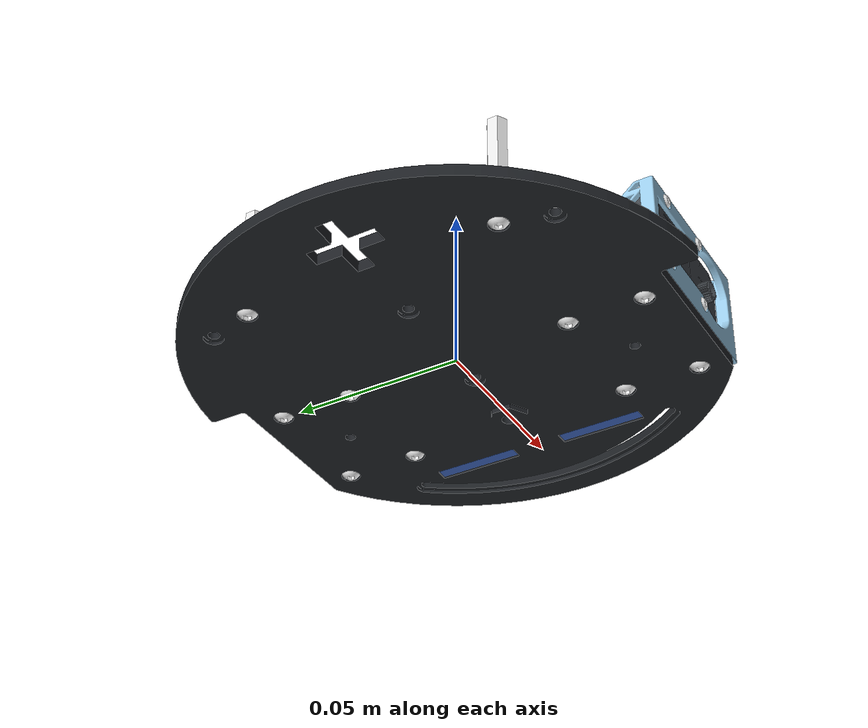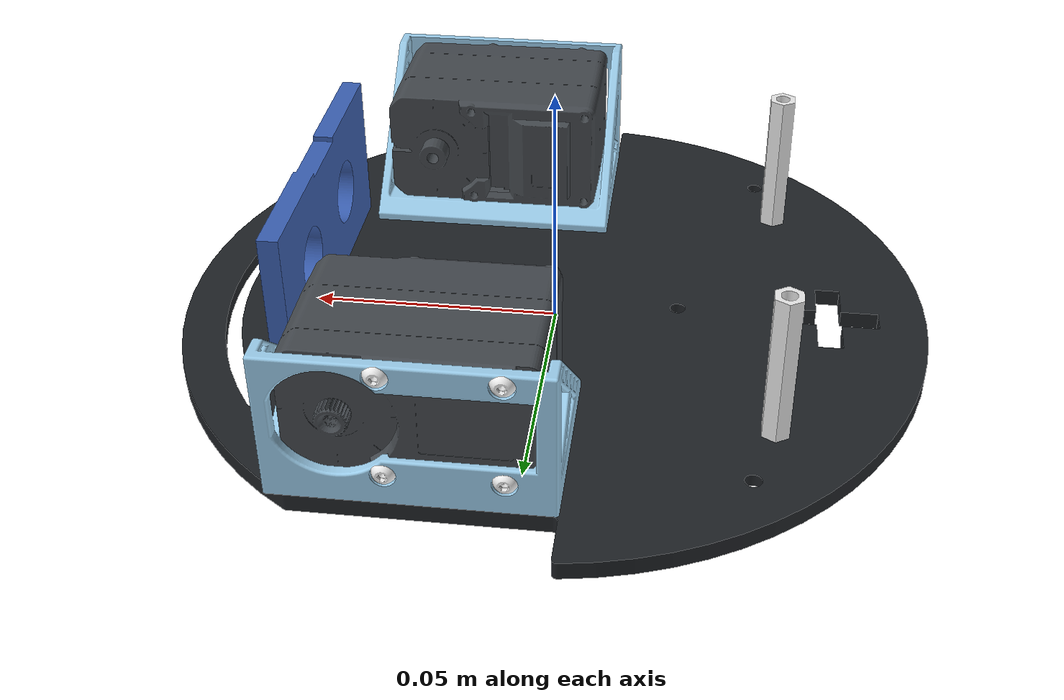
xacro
<?xml version="1.0" ?>
<robot xmlns:xacro="http://www.ros.org/wiki/xacro">

    <xacro:property name="base_floor1_m" value="0.256267" />
    <xacro:property name="base_floor1_r" value="0.07500000" />
    <xacro:property name="base_floor1_h" value="0.03350000" />
    <xacro:property name="base_floor1_o_xyz" value="0 0 ${base_floor1_h / 2}" />
    <xacro:property name="base_floor1_o_rpy" value="0 0 0" />

    <!-- Link base_floor1 -->
    <link name="base_floor1">
        <xacro:cylinder_inertia m="${base_floor1_m}" r="${base_floor1_r}" h="${base_floor1_h}" o_xyz="${base_floor1_o_xyz}" o_rpy="${base_floor1_o_rpy}"/>

        <collision>
        <origin xyz="${base_floor1_o_xyz}" rpy="${base_floor1_o_rpy}"/>
        <geometry>
            <cylinder radius="${base_floor1_r}" length="${base_floor1_h}" />
        </geometry>
        </collision>

        <!-- Part bn_8699_1727796_hexagon_socket_button_head_screw_m2_5x6 -->
        <visual>
        <origin xyz="0.0217 0.0627386 0.00961" rpy="3.14159 0 -1.5708"/>
        <geometry>
            <mesh filename="package://gizmo_description/meshes/bn_8699_1727796_hexagon_socket_button_head_screw_m2_5x6.stl"/>
        </geometry>
        <material name="bn_8699_1727796_hexagon_socket_button_head_screw_m2_5x6_material">
            <color rgba="0.941176 0.941176 0.941176 1"/>
        </material>
        </visual>

        <!-- Part standoff_spacer_m3_30mm -->
        <visual>
        <origin xyz="-0.0444488 -0.0371773 0.0035" rpy="0 -0 0"/>
        <geometry>
            <mesh filename="package://gizmo_description/meshes/standoff_spacer_m3_30mm.stl"/>
        </geometry>
        <material name="standoff_spacer_m3_30mm_material">
            <color rgba="0.917647 0.917647 0.917647 1"/>
        </material>
        </visual>

        <!-- Part bn_1593_1348663_hexagon_socket_button_head_screw_m3x6 -->
        <visual>
        <origin xyz="-0.0444488 -0.0371773 0.001" rpy="-0 -1.5708 0"/>
        <geometry>
            <mesh filename="package://gizmo_description/meshes/bn_1593_1348663_hexagon_socket_button_head_screw_m3x6.stl"/>
        </geometry>
        <material name="bn_1593_1348663_hexagon_socket_button_head_screw_m3x6_material">
            <color rgba="0.941176 0.941176 0.941176 1"/>
        </material>
        </visual>

        <!-- Part bn_8699_1727796_hexagon_socket_button_head_screw_m2_5x6_2 -->
        <visual>
        <origin xyz="0.001 -0.0627386 0.00961" rpy="1.5708 -0 1.5708"/>
        <geometry>
            <mesh filename="package://gizmo_description/meshes/bn_8699_1727796_hexagon_socket_button_head_screw_m2_5x6.stl"/>
        </geometry>
        <material name="bn_8699_1727796_hexagon_socket_button_head_screw_m2_5x6_2_material">
            <color rgba="0.941176 0.941176 0.941176 1"/>
        </material>
        </visual>

        <!-- Part standoff_spacer_m3_30mm_2 -->
        <visual>
        <origin xyz="-0.0444488 0.0371773 0.0035" rpy="0 -0 0"/>
        <geometry>
            <mesh filename="package://gizmo_description/meshes/standoff_spacer_m3_30mm.stl"/>
        </geometry>
        <material name="standoff_spacer_m3_30mm_2_material">
            <color rgba="0.917647 0.917647 0.917647 1"/>
        </material>
        </visual>

        <!-- Part bn_1593_1348663_hexagon_socket_button_head_screw_m3x6_2 -->
        <visual>
        <origin xyz="-0.00011 -0.0337386 0.001" rpy="-0 -1.5708 0"/>
        <geometry>
            <mesh filename="package://gizmo_description/meshes/bn_1593_1348663_hexagon_socket_button_head_screw_m3x6.stl"/>
        </geometry>
        <material name="bn_1593_1348663_hexagon_socket_button_head_screw_m3x6_2_material">
            <color rgba="0.941176 0.941176 0.941176 1"/>
        </material>
        </visual>

        <!-- Part bn_1593_1348663_hexagon_socket_button_head_screw_m3x6_3 -->
        <visual>
        <origin xyz="-0.00011 0.0337386 0.001" rpy="-0 -1.5708 0"/>
        <geometry>
            <mesh filename="package://gizmo_description/meshes/bn_1593_1348663_hexagon_socket_button_head_screw_m3x6.stl"/>
        </geometry>
        <material name="bn_1593_1348663_hexagon_socket_button_head_screw_m3x6_3_material">
            <color rgba="0.941176 0.941176 0.941176 1"/>
        </material>
        </visual>

        <!-- Part bn_8699_1727796_hexagon_socket_button_head_screw_m2_5x6_3 -->
        <visual>
        <origin xyz="0.0217 -0.0627386 0.00961" rpy="1.5708 -0 1.5708"/>
        <geometry>
            <mesh filename="package://gizmo_description/meshes/bn_8699_1727796_hexagon_socket_button_head_screw_m2_5x6.stl"/>
        </geometry>
        <material name="bn_8699_1727796_hexagon_socket_button_head_screw_m2_5x6_3_material">
            <color rgba="0.941176 0.941176 0.941176 1"/>
        </material>
        </visual>

        <!-- Part bn_1593_1348663_hexagon_socket_button_head_screw_m3x6_4 -->
        <visual>
        <origin xyz="0.03511 0.0557386 0.001" rpy="-0 -1.5708 0"/>
        <geometry>
            <mesh filename="package://gizmo_description/meshes/bn_1593_1348663_hexagon_socket_button_head_screw_m3x6.stl"/>
        </geometry>
        <material name="bn_1593_1348663_hexagon_socket_button_head_screw_m3x6_4_material">
            <color rgba="0.941176 0.941176 0.941176 1"/>
        </material>
        </visual>

        <!-- Part base_floor_1 -->
        <visual>
        <origin xyz="0 0 0" rpy="0 -0 0"/>
        <geometry>
            <mesh filename="package://gizmo_description/meshes/base_floor_1.stl"/>
        </geometry>
        <material name="base_floor_1_material">
            <color rgba="0.121569 0.133333 0.14902 1"/>
        </material>
        </visual>

        <!-- Part servo_bracket_r -->
        <visual>
        <origin xyz="0.0175 -0.0447386 0.0035" rpy="0 -0 0"/>
        <geometry>
            <mesh filename="package://gizmo_description/meshes/servo_bracket_r.stl"/>
        </geometry>
        <material name="servo_bracket_r_material">
            <color rgba="0.615686 0.811765 0.929412 1"/>
        </material>
        </visual>

        <!-- Part bn_1593_1348663_hexagon_socket_button_head_screw_m3x6_5 -->
        <visual>
        <origin xyz="0.03511 0.0337386 0.001" rpy="-0 -1.5708 0"/>
        <geometry>
            <mesh filename="package://gizmo_description/meshes/bn_1593_1348663_hexagon_socket_button_head_screw_m3x6.stl"/>
        </geometry>
        <material name="bn_1593_1348663_hexagon_socket_button_head_screw_m3x6_5_material">
            <color rgba="0.941176 0.941176 0.941176 1"/>
        </material>
        </visual>

        <!-- Part servo_bracket_l -->
        <visual>
        <origin xyz="0.0175 0.0447386 0.0035" rpy="0 -0 0"/>
        <geometry>
            <mesh filename="package://gizmo_description/meshes/servo_bracket_l.stl"/>
        </geometry>
        <material name="servo_bracket_l_material">
            <color rgba="0.615686 0.811765 0.929412 1"/>
        </material>
        </visual>

        <!-- Part bn_1593_1348663_hexagon_socket_button_head_screw_m3x6_6 -->
        <visual>
        <origin xyz="-0.0444488 0.0371773 0.001" rpy="-0 -1.5708 0"/>
        <geometry>
            <mesh filename="package://gizmo_description/meshes/bn_1593_1348663_hexagon_socket_button_head_screw_m3x6.stl"/>
        </geometry>
        <material name="bn_1593_1348663_hexagon_socket_button_head_screw_m3x6_6_material">
            <color rgba="0.941176 0.941176 0.941176 1"/>
        </material>
        </visual>

        <!-- Part st3215_hs_l -->
        <visual>
        <origin xyz="0.0175 0.0452886 0.00753371" rpy="0 -0 -0"/>
        <geometry>
            <mesh filename="package://gizmo_description/meshes/st3215_hs_l.stl"/>
        </geometry>
        <material name="st3215_hs_l_material">
            <color rgba="0.262745 0.282353 0.301961 1"/>
        </material>
        </visual>

        <!-- Part st3215_hs_r -->
        <visual>
        <origin xyz="0.0175 -0.0452886 0.00753324" rpy="0 -0 -0"/>
        <geometry>
            <mesh filename="package://gizmo_description/meshes/st3215_hs_r.stl"/>
        </geometry>
        <material name="st3215_hs_r_material">
            <color rgba="0.262745 0.282353 0.301961 1"/>
        </material>
        </visual>

        <!-- Part bn_8699_1727796_hexagon_socket_button_head_screw_m2_5x6_4 -->
        <visual>
        <origin xyz="0.001 0.0627386 0.03011" rpy="3.14159 0 -1.5708"/>
        <geometry>
            <mesh filename="package://gizmo_description/meshes/bn_8699_1727796_hexagon_socket_button_head_screw_m2_5x6.stl"/>
        </geometry>
        <material name="bn_8699_1727796_hexagon_socket_button_head_screw_m2_5x6_4_material">
            <color rgba="0.941176 0.941176 0.941176 1"/>
        </material>
        </visual>

        <!-- Part bn_8699_1727796_hexagon_socket_button_head_screw_m2_5x6_5 -->
        <visual>
        <origin xyz="0.001 0.0627386 0.00961" rpy="3.14159 0 -1.5708"/>
        <geometry>
            <mesh filename="package://gizmo_description/meshes/bn_8699_1727796_hexagon_socket_button_head_screw_m2_5x6.stl"/>
        </geometry>
        <material name="bn_8699_1727796_hexagon_socket_button_head_screw_m2_5x6_5_material">
            <color rgba="0.941176 0.941176 0.941176 1"/>
        </material>
        </visual>

        <!-- Part face_plate_bottom -->
        <visual>
        <origin xyz="0.048 -0 0.0035" rpy="0 -0 0"/>
        <geometry>
            <mesh filename="package://gizmo_description/meshes/face_plate_bottom.stl"/>
        </geometry>
        <material name="face_plate_bottom_material">
            <color rgba="0.231373 0.380392 0.705882 1"/>
        </material>
        </visual>

        <!-- Part bn_1593_1348663_hexagon_socket_button_head_screw_m3x6_7 -->
        <visual>
        <origin xyz="0.03511 -0.0337386 0.001" rpy="-0 -1.5708 0"/>
        <geometry>
            <mesh filename="package://gizmo_description/meshes/bn_1593_1348663_hexagon_socket_button_head_screw_m3x6.stl"/>
        </geometry>
        <material name="bn_1593_1348663_hexagon_socket_button_head_screw_m3x6_7_material">
            <color rgba="0.941176 0.941176 0.941176 1"/>
        </material>
        </visual>

        <!-- Part bn_8699_1727796_hexagon_socket_button_head_screw_m2_5x6_6 -->
        <visual>
        <origin xyz="0.0217 -0.0627386 0.03011" rpy="1.5708 -0 1.5708"/>
        <geometry>
            <mesh filename="package://gizmo_description/meshes/bn_8699_1727796_hexagon_socket_button_head_screw_m2_5x6.stl"/>
        </geometry>
        <material name="bn_8699_1727796_hexagon_socket_button_head_screw_m2_5x6_6_material">
            <color rgba="0.941176 0.941176 0.941176 1"/>
        </material>
        </visual>

        <!-- Part bn_1593_1348663_hexagon_socket_button_head_screw_m3x6_8 -->
        <visual>
        <origin xyz="0.03511 -0.0557386 0.001" rpy="-0 -1.5708 0"/>
        <geometry>
            <mesh filename="package://gizmo_description/meshes/bn_1593_1348663_hexagon_socket_button_head_screw_m3x6.stl"/>
        </geometry>
        <material name="bn_1593_1348663_hexagon_socket_button_head_screw_m3x6_8_material">
            <color rgba="0.941176 0.941176 0.941176 1"/>
        </material>
        </visual>

        <!-- Part bn_8699_1727796_hexagon_socket_button_head_screw_m2_5x6_7 -->
        <visual>
        <origin xyz="0.001 -0.0627386 0.03011" rpy="1.5708 -0 1.5708"/>
        <geometry>
            <mesh filename="package://gizmo_description/meshes/bn_8699_1727796_hexagon_socket_button_head_screw_m2_5x6.stl"/>
        </geometry>
        <material name="bn_8699_1727796_hexagon_socket_button_head_screw_m2_5x6_7_material">
            <color rgba="0.941176 0.941176 0.941176 1"/>
        </material>
        </visual>

        <!-- Part bn_1593_1348663_hexagon_socket_button_head_screw_m3x6_9 -->
        <visual>
        <origin xyz="-0.00011 0.0557386 0.001" rpy="-0 -1.5708 0"/>
        <geometry>
            <mesh filename="package://gizmo_description/meshes/bn_1593_1348663_hexagon_socket_button_head_screw_m3x6.stl"/>
        </geometry>
        <material name="bn_1593_1348663_hexagon_socket_button_head_screw_m3x6_9_material">
            <color rgba="0.941176 0.941176 0.941176 1"/>
        </material>
        </visual>

        <!-- Part bn_8699_1727796_hexagon_socket_button_head_screw_m2_5x6_8 -->
        <visual>
        <origin xyz="0.0217 0.0627386 0.03011" rpy="3.14159 0 -1.5708"/>
        <geometry>
            <mesh filename="package://gizmo_description/meshes/bn_8699_1727796_hexagon_socket_button_head_screw_m2_5x6.stl"/>
        </geometry>
        <material name="bn_8699_1727796_hexagon_socket_button_head_screw_m2_5x6_8_material">
            <color rgba="0.941176 0.941176 0.941176 1"/>
        </material>
        </visual>

        <!-- Part bn_1593_1348663_hexagon_socket_button_head_screw_m3x6_10 -->
        <visual>
        <origin xyz="-0.00011 -0.0557386 0.001" rpy="-0 -1.5708 0"/>
        <geometry>
            <mesh filename="package://gizmo_description/meshes/bn_1593_1348663_hexagon_socket_button_head_screw_m3x6.stl"/>
        </geometry>
        <material name="bn_1593_1348663_hexagon_socket_button_head_screw_m3x6_10_material">
            <color rgba="0.941176 0.941176 0.941176 1"/>
        </material>
        </visual>

    </link>

</robot>
